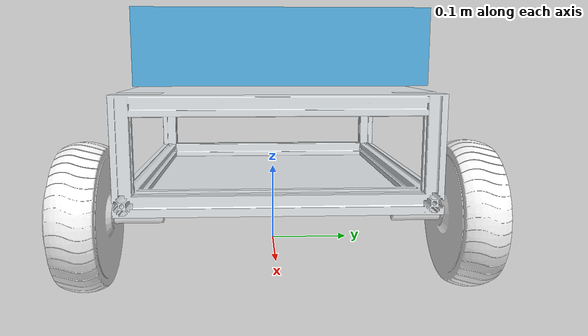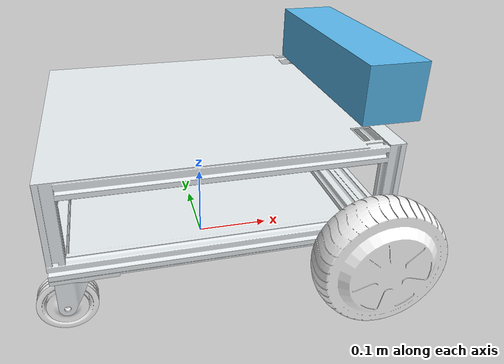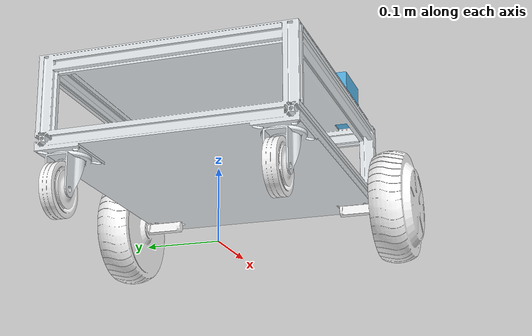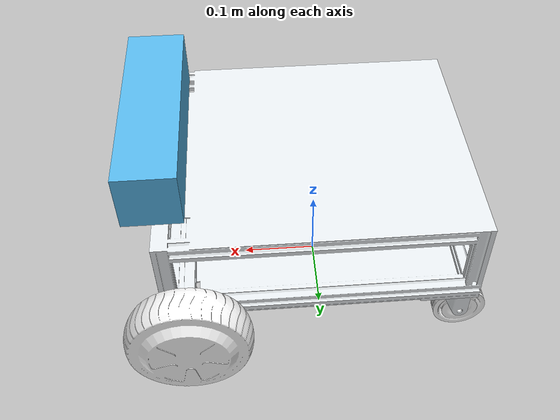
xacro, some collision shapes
<?xml version="1.0" encoding="utf-8"?>
<robot xmlns:xacro="http://www.ros.org/wiki/xacro"
	name="blattoidea_gazebo">

	<xacro:include filename="$(find blattoidea)/urdf/base_footprint.xacro"/>
	<xacro:base_footprint/>

	<xacro:include filename="$(find blattoidea)/urdf/blattoidea.urdf.xacro"/>

	<xacro:include filename="$(find blattoidea)/urdf/kinect.xacro"/>
	<xacro:kinect/>

</robot>

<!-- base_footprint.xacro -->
<robot xmlns:xacro="http://www.ros.org/wiki/xacro">
	<xacro:macro name="base_footprint">
		<link name="base_footprint">
		</link>

		<joint name="base_footprint_base_link_joint" type="fixed">
			<origin xyz="0 0 0.08256"/>
			<parent link="base_footprint"/>
			<child link="base_link"/>
		</joint>
	</xacro:macro>
</robot>

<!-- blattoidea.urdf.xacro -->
<robot xmlns:xacro="http://www.ros.org/wiki/xacro"
	name="blattoidea">
<link name="base_link" />
<joint name="base_link_to_chassis" type="fixed">
    <parent link="base_link"/>
    <child link="chassis"/>
  </joint>
  <link
    name="chassis">
    <inertial>
      <origin
        xyz="0.0045146 -5.164E-15 0.057846"
        rpy="0 0 0" />
      <mass
        value="3.1167" />
      <inertia
        ixx="0.019062"
        ixy="-7.8129E-14"
        ixz="-1.0872E-16"
        iyy="0.027663"
        iyz="-6.4246E-16"
        izz="0.046295" />
    </inertial>
    <visual>
      <origin
        xyz="0 0 0"
        rpy="0 0 0" />
      <geometry>
        <mesh
          filename="package://blattoidea/meshes/base_link.STL" />
      </geometry>
      <material
        name="">
        <color
          rgba="0.89804 0.91765 0.92941 1" />
      </material>
    </visual>
    <collision>
      <origin
        xyz="0 0 0"
        rpy="0 0 0" />
      <geometry>
        <mesh
          filename="package://blattoidea/meshes/base_link.STL" />
      </geometry>
    </collision>
  </link>
  <link
    name="lw_Link">
    <inertial>
      <origin
        xyz="0.080855 -1.8595E-13 -7.2809E-06"
        rpy="0 0 0" />
      <mass
        value="0.97717" />
      <inertia
        ixx="0.0027567"
        ixy="-1.0351E-14"
        ixz="-3.9098E-07"
        iyy="0.001617"
        iyz="4.5745E-16"
        izz="0.0016171" />
    </inertial>
    <visual>
      <origin
        xyz="0 0 0"
        rpy="0 0 0" />
      <geometry>
        <mesh
          filename="package://blattoidea/meshes/lw_Link.STL" />
      </geometry>
      <material
        name="">
        <color
          rgba="1 1 1 1" />
      </material>
    </visual>
    <collision>
      <origin
        xyz="0 0 0"
        rpy="0 0 0" />
      <geometry>
        <mesh
          filename="package://blattoidea/meshes/lw_Link.STL" />
      </geometry>
    </collision>
  </link>
  <joint
    name="lw_joint"
    type="continuous">
    <origin
      xyz="0.17114 0.1226 -0.006"
      rpy="-1.5708 0 1.5708" />
    <parent
      link="base_link" />
    <child
      link="lw_Link" />
    <axis
      xyz="1 0 0" />
      <dynamics damping="0.0" friction="0.0"/>
  </joint>
  <link
    name="rw_Link">
    <inertial>
      <origin
        xyz="0.080855 2.7863E-14 -7.2809E-06"
        rpy="0 0 0" />
      <mass
        value="0.97717" />
      <inertia
        ixx="0.0027567"
        ixy="-1.035E-14"
        ixz="-3.9098E-07"
        iyy="0.001617"
        iyz="4.5874E-16"
        izz="0.0016171" />
    </inertial>
    <visual>
      <origin
        xyz="0 0 0"
        rpy="0 0 0" />
      <geometry>
        <mesh
          filename="package://blattoidea/meshes/rw_Link.STL" />
      </geometry>
      <material
        name="">
        <color
          rgba="1 1 1 1" />
      </material>
    </visual>
    <collision>
      <origin
        xyz="0 0 0"
        rpy="0 0 0" />
      <geometry>
        <mesh
          filename="package://blattoidea/meshes/rw_Link.STL" />
      </geometry>
    </collision>
  </link>
  <joint
    name="rw_joint"
    type="continuous">
    <origin
      xyz="0.17114 -0.1226 -0.006"
      rpy="1.5708 0 -1.5708" />
    <parent
      link="base_link" />
    <child
      link="rw_Link" />
    <axis
      xyz="-1 0 0" />
      <dynamics damping="0.0" friction="0.0"/>
  </joint>
  <link
    name="r_caster_Link">
    <inertial>
      <origin
        xyz="-1.8867E-08 -0.017703 0.012932"
        rpy="0 0 0" />
      <mass
        value="0.026461" />
      <inertia
        ixx="1.1218E-05"
        ixy="3.2756E-12"
        ixz="-1.1431E-12"
        iyy="9.1178E-06"
        iyz="2.5189E-06"
        izz="1.0862E-05" />
    </inertial>
    <visual>
      <origin
        xyz="0 0 0"
        rpy="0 0 0" />
      <geometry>
        <mesh
          filename="package://blattoidea/meshes/r_caster_Link.STL" />
      </geometry>
      <material
        name="">
        <color
          rgba="0.89804 0.91765 0.92941 1" />
      </material>
    </visual>
    <collision>
      <origin
        xyz="0 0 0"
        rpy="0 0 0" />
      <geometry>
        <mesh
          filename="package://blattoidea/meshes/r_caster_Link.STL" />
      </geometry>
    </collision>
  </link>
  <joint
    name="r_caster_joint"
    type="continuous">
    <origin
      xyz="-0.15936 -0.14 -0.0051144"
      rpy="1.5182 0 -1.5708" />
    <parent
      link="base_link" />
    <child
      link="r_caster_Link" />
    <axis
      xyz="0 0.99862 0.052537" />
      <dynamics damping="0.0" friction="0.0"/>
  </joint>
  <link
    name="rc_wheel_Link">
    <inertial>
      <origin
        xyz="2.8588E-14 -7.8992E-14 2.9227E-14"
        rpy="0 0 0" />
      <mass
        value="0.0499" />
      <inertia
        ixx="3.5408E-05"
        ixy="1.3756E-22"
        ixz="-9.8358E-23"
        iyy="1.8462E-05"
        iyz="-2.8196E-22"
        izz="1.8462E-05" />
    </inertial>
    <visual>
      <origin
        xyz="0 0 0"
        rpy="0 0 0" />
      <geometry>
        <mesh
          filename="package://blattoidea/meshes/rc_wheel_Link.STL" />
      </geometry>
      <material
        name="">
        <color
          rgba="1 1 1 1" />
      </material>
    </visual>
    <collision>
      <origin
        xyz="0 0 0"
        rpy="0 0 0" />
      <geometry>
        <mesh
          filename="package://blattoidea/meshes/rc_wheel_Link.STL" />
      </geometry>
    </collision>
  </link>
  <joint
    name="rc_wheel_joint"
    type="continuous">
    <origin
      xyz="0 -0.049133 0.02245"
      rpy="-0.052561 0 3.1416" />
    <parent
      link="r_caster_Link" />
    <child
      link="rc_wheel_Link" />
    <axis
      xyz="1 0 0" />
      <dynamics damping="0.0" friction="0.0"/>
  </joint>
  <link
    name="l_caster_Link">
    <inertial>
      <origin
        xyz="-1.8867E-08 -0.017703 0.012932"
        rpy="0 0 0" />
      <mass
        value="0.026461" />
      <inertia
        ixx="1.1218E-05"
        ixy="3.2756E-12"
        ixz="-1.1431E-12"
        iyy="9.1178E-06"
        iyz="2.5189E-06"
        izz="1.0862E-05" />
    </inertial>
    <visual>
      <origin
        xyz="0 0 0"
        rpy="0 0 0" />
      <geometry>
        <mesh
          filename="package://blattoidea/meshes/l_caster_Link.STL" />
      </geometry>
      <material
        name="">
        <color
          rgba="0.89804 0.91765 0.92941 1" />
      </material>
    </visual>
    <collision>
      <origin
        xyz="0 0 0"
        rpy="0 0 0" />
      <geometry>
        <mesh
          filename="package://blattoidea/meshes/l_caster_Link.STL" />
      </geometry>
    </collision>
  </link>
  <joint
    name="l_caster_joint"
    type="continuous">
    <origin
      xyz="-0.15936 0.14 -0.0051144"
      rpy="1.5182 0 -1.5708" />
    <parent
      link="base_link" />
    <child
      link="l_caster_Link" />
    <axis
      xyz="0 0.99862 0.052537" />
      <dynamics damping="0.0" friction="0.0"/>
  </joint>
  <link
    name="lc_wheel_Link">
    <inertial>
      <origin
        xyz="3.7886E-14 3.1898E-14 1.2351E-14"
        rpy="0 0 0" />
      <mass
        value="0.0499" />
      <inertia
        ixx="3.5408E-05"
        ixy="5.3767E-22"
        ixz="-9.5971E-22"
        iyy="1.8462E-05"
        iyz="2.3036E-21"
        izz="1.8462E-05" />
    </inertial>
    <visual>
      <origin
        xyz="0 0 0"
        rpy="0 0 0" />
      <geometry>
        <mesh
          filename="package://blattoidea/meshes/lc_wheel_Link.STL" />
      </geometry>
      <material
        name="">
        <color
          rgba="1 1 1 1" />
      </material>
    </visual>
    <collision>
      <origin
        xyz="0 0 0"
        rpy="0 0 0" />
      <geometry>
        <mesh
          filename="package://blattoidea/meshes/lc_wheel_Link.STL" />
      </geometry>
    </collision>
  </link>
  <joint
    name="lc_wheel_joint"
    type="continuous">
    <origin
      xyz="0 -0.049133 0.02245"
      rpy="3.089 0 3.1416" />
    <parent
      link="l_caster_Link" />
    <child
      link="lc_wheel_Link" />
    <axis
      xyz="-1 0 0" />
      <dynamics damping="0.0" friction="0.0"/>
  </joint>

	<gazebo>
     <plugin name="JointStatePublisher" filename="libJointStatePublisher.so"/>
	</gazebo>
</robot>

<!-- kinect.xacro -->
<robot xmlns:xacro="http://www.ros.org/wiki/xacro">
	<xacro:macro name="kinect">
		<joint name="base_camera_joint" type="fixed">
			<origin xyz="0.2 0 0.17" rpy="0 0 0" />
			<parent link="base_link" />
			<origin xyz="0 0 0" rpy="0 0 0" />
			<child link="camera_link" />
		</joint>

		<link name="camera_link">
			<inertial>
				<mass value="0.01" />
				<origin xyz="0 0 0" />
				<inertia ixx="0.001" ixy="0.0" ixz="0.0"
					iyy="0.001" iyz="0.0"
					izz="0.001" />
			</inertial>
				<visual>
				<origin xyz=" 0 0 0 " rpy="0 0 0" />
				<geometry>
					<mesh filename="package://blattoidea/meshes/kinect.dae"/>
				</geometry>
			</visual>
			<collision>
				<origin xyz="0.0 0.0 0.0" rpy="0 0 0" />
				<geometry>
					<box size="0.0730 .2760 0.0720"/>
				</geometry>
			</collision>
		</link>

		<joint name="camera_depth_joint" type="fixed">
			<origin xyz="0 0.011 0" rpy="0 0 0" />
				<parent link="camera_link" />
			<child link="camera_depth_frame" />
		</joint>

		<link name="camera_depth_frame">
			<inertial>
				<mass value="0.01" />
				<origin xyz="0 0 0" />
				<inertia ixx="0.001" ixy="0.0" ixz="0.0"
					iyy="0.001" iyz="0.0"
					izz="0.001" />
			</inertial>
		</link>

		<joint name="camera_depth_optical_joint" type="fixed">
			<origin xyz="0 0 0" rpy="-1.57 0 -1.57" />
			<parent link="camera_depth_frame" />
			<child link="camera_depth_optical_frame" />
		</joint>

		<link name="camera_depth_optical_frame">
			<inertial>
				<mass value="0.001" />
				<origin xyz="0 0 0" />
				<inertia ixx="0.0001" ixy="0.0" ixz="0.0"
					iyy="0.0001" iyz="0.0"
					izz="0.0001" />
			</inertial>
		</link>

		<joint name="camera_rgb_joint" type="fixed">
			<origin xyz="0 -0.012 0" rpy="0 0 0" />
			<parent link="camera_link" />
			<child link="camera_rgb_frame" />
		</joint>

		<link name="camera_rgb_frame">
			<inertial>
				<mass value="0.001" />
				<origin xyz="0 0 0" />
				<inertia ixx="0.0001" ixy="0.0" ixz="0.0"
					iyy="0.0001" iyz="0.0"
					izz="0.0001" />
			</inertial>
		</link>

		<joint name="camera_rgb_optical_joint" type="fixed">
			<origin xyz="0 0 0" rpy="-1.57 0 -1.57" />
			<parent link="camera_rgb_frame" />
			<child link="camera_rgb_optical_frame" />
		</joint>

		<link name="camera_rgb_optical_frame">
			<inertial>
			<mass value="0.001" />
			<origin xyz="0 0 0" />
			<inertia ixx="0.0001" ixy="0.0" ixz="0.0"
				iyy="0.0001" iyz="0.0"
				izz="0.0001" />
			</inertial>
		</link>

		<gazebo reference="camera_link">
			<sensor name="kinect" type="depth">
				<update_rate>90</update_rate>
				<camera>
					<horizontal_fov>1.047198</horizontal_fov>
					<image>
						<width>1024</width>
						<height>1024</height>
						<format>R8G8B8</format>
					</image>
					<clip>
						<near>0.05</near>
						<far>20</far>
					</clip>
				</camera>
				<plugin name="depth_controller" filename="libgazebo_ros_openni_kinect.so">
					<baseline>0.2</baseline>
					<alwaysOn>true</alwaysOn>
					<updateRate>0.0</updateRate>
					<cameraName>kinect_ir</cameraName>
					<imageTopicName>/kinect/color/image_raw</imageTopicName>
					<cameraInfoTopicName>/kinect/color/camera_info</cameraInfoTopicName>
					<depthImageTopicName>/kinect/depth/image_raw</depthImageTopicName>
					<depthImageInfoTopicName>/kinect/depth/camera_info</depthImageInfoTopicName>
					<pointCloudTopicName>/kinect/depth/points</pointCloudTopicName>
					<frameName>camera_link</frameName>
					<pointCloudCutoff>0.05</pointCloudCutoff>
					<pointCloudCutoffMax>20</pointCloudCutoffMax>
					<distortionK1>0.0</distortionK1>
					<distortionK2>0.0</distortionK2>
					<distortionK3>0.0</distortionK3>
					<distortionT1>0.0</distortionT1>
					<distortionT2>0.0</distortionT2>
					<CxPrime>0</CxPrime>
					<Cx>0</Cx>
					<Cy>0</Cy>
					<focalLength>0</focalLength>
					<hackBaseline>0</hackBaseline>
				</plugin>
			</sensor>
		</gazebo>
	</xacro:macro>
</robot>
